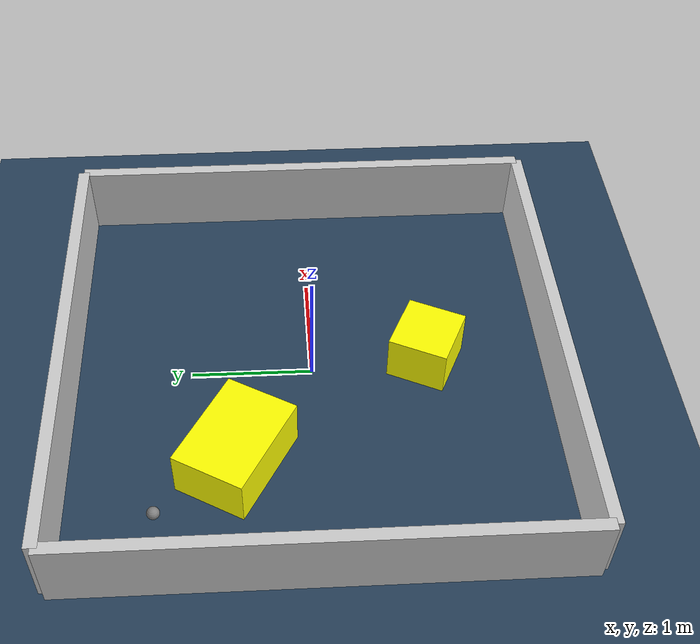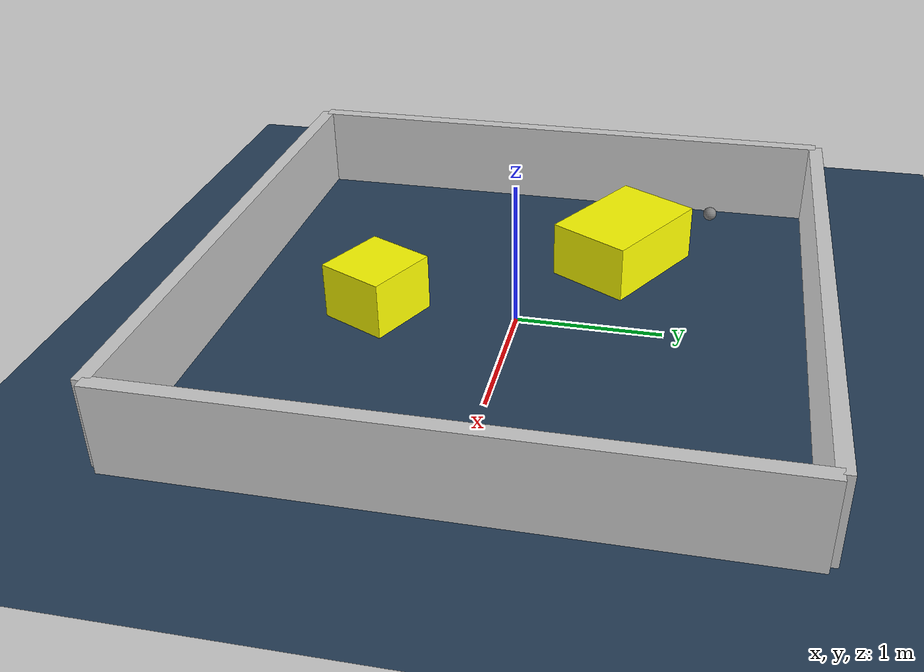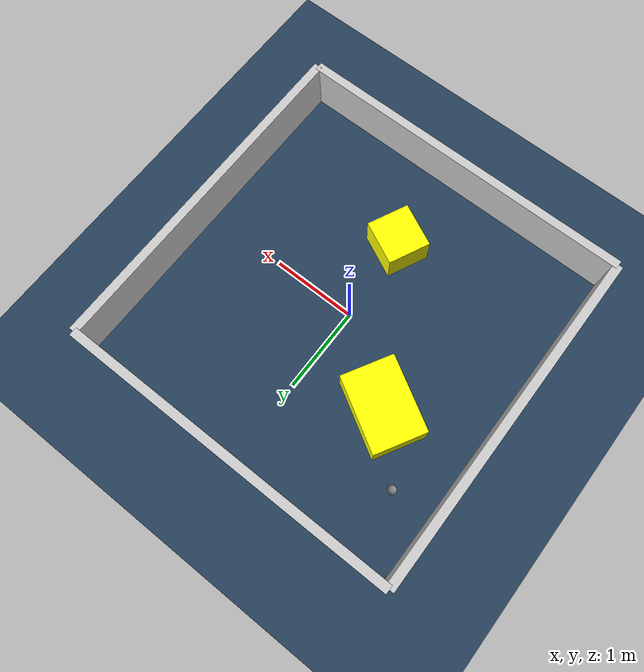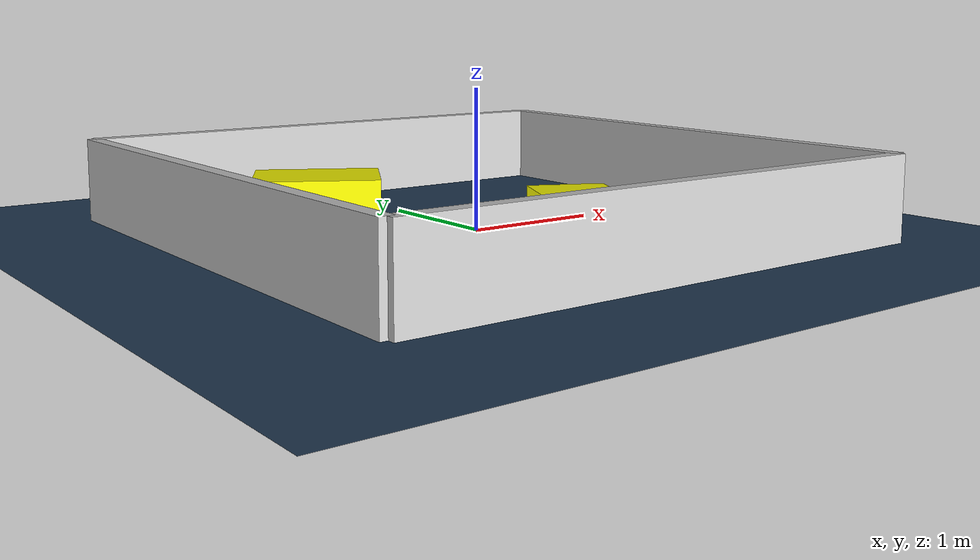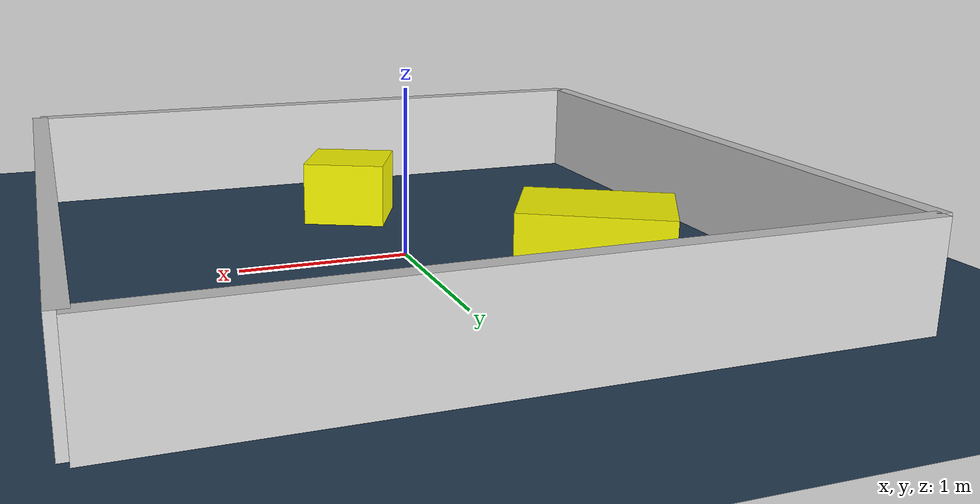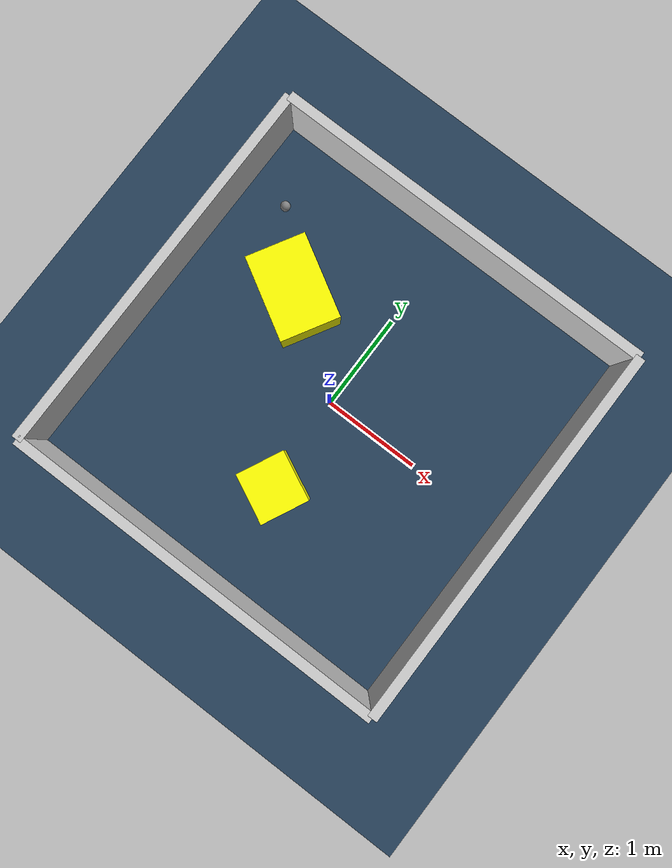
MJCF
<?xml version="1.0" ?>
<mujoco model="generated_environment">
  <option timestep="0.01" integrator="RK4" cone="elliptic"/>
  <default>
    <geom density="1"/>
  </default>
  <asset>
    <texture builtin="gradient" height="3072" rgb1="0.3 0.5 0.7" rgb2="0 0 0" type="skybox" width="512"/>
    <texture builtin="checker" height="300" mark="edge" markrgb="0.8 0.8 0.8" name="groundplane" rgb1="0.2 0.3 0.4" rgb2="0.1 0.2 0.3" type="2d" width="300"/>
    <material name="groundplane" reflectance="0.2" texrepeat="5 5" texture="groundplane" texuniform="true"/>
    <material name="robot" rgba="0.0 1.0 0.0 1"/>
  </asset>
  <worldbody>
    <light dir="0 0 -1" directional="true" pos="0 0 1.5"/>
    <geom condim="4" friction="1.0 0.005 0.001" material="groundplane" name="floor" size="0 0 0.05" type="plane"/>
    <body name="walls">
      <geom name="wall_1" condim="4" pos="-2.0 0.0 0.3" rgba="0.800000011920929 0.800000011920929 0.800000011920929 1.0" size="0.05 2.0 0.3" type="box"/>
      <geom name="wall_2" condim="4" pos="2.0 0.0 0.3" rgba="0.800000011920929 0.800000011920929 0.800000011920929 1.0" size="0.05 2.0 0.3" type="box"/>
      <geom name="wall_3" condim="4" pos="0.0 -2.0 0.3" rgba="0.800000011920929 0.800000011920929 0.800000011920929 1.0" size="2.0 0.05 0.3" type="box"/>
      <geom name="wall_4" condim="4" pos="0.0 2.0 0.3" rgba="0.800000011920929 0.800000011920929 0.800000011920929 1.0" size="2.0 0.05 0.3" type="box"/>
    </body>
    <body name="robot">
      <joint name="joint_x" type="slide" pos="0 0 0" axis="1 0 0"/>
      <joint name="joint_y" type="slide" pos="0 0 0" axis="0 1 0"/>
      <geom name="robot" type="sphere" pos="-1.4885756821692477 1.2390735960478771 0.2" size="0.05" mass="5." friction="1.0 0.005 0.0001" condim="4"/>
      <site name="sensor_ball"/>
    </body>
    <body name="obstacle_1_movable">
      <geom name="obstacle_1_movable" condim="4" pos="0.07291540085369053 -0.9594491461789465 0.2" euler="0 0 64.43394962193354" friction="1.0 0.005 0.001" rgba="1 1 0 1" size="0.2464304848963845 0.25913009165226997 0.2" type="box" mass="0.1"/>
      <joint type="free"/>
    </body>
    <body name="obstacle_2_movable">
      <geom name="obstacle_2_movable" condim="4" pos="-0.9178683254091484 0.6291620654764072 0.2" euler="0 0 240.1994066434065" friction="1.0 0.005 0.001" rgba="1 1 0 1" size="0.3045888887402882 0.43622136615563817 0.2" type="box" mass="0.1"/>
      <joint type="free"/>
    </body>
  </worldbody>
  <actuator>
    <motor name="actuator_x" joint="joint_x" gear="1" ctrlrange="-1 1"/>
    <motor name="actuator_y" joint="joint_y" gear="1" ctrlrange="-1 1"/>
  </actuator>
</mujoco>
